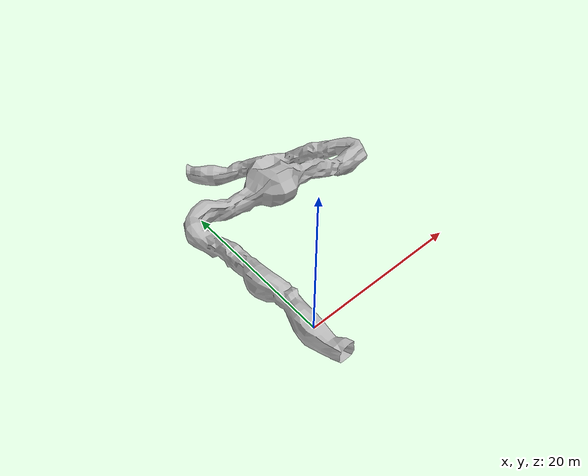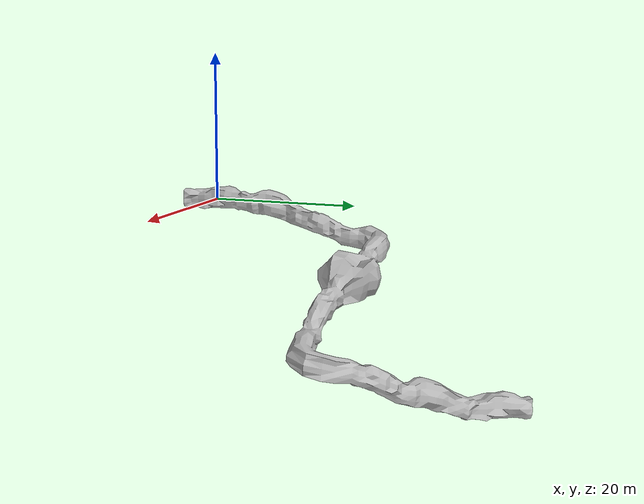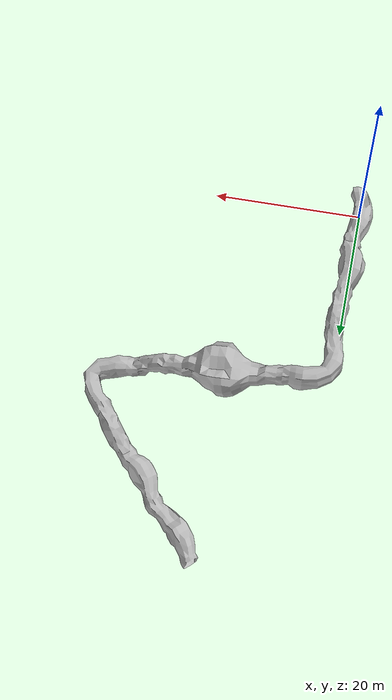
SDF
<?xml version="1.0" ?>
<sdf version="1.7">
  <model name="cave">
    <static>true</static>
    <link name="cave_link">
      <visual name="cave_visual">
        <geometry>
          <mesh>
            <uri>model://cave/meshes/smallcaves2.dae</uri>
            <scale>1 1 1</scale>
          </mesh>
        </geometry>
      </visual>
      <collision name="cave_collision">
        <geometry>
          <mesh>
            <uri>model://cave/meshes/smallcaves2.dae</uri>
            <scale>1 1 1</scale>
          </mesh>
        </geometry>
      </collision>
    </link>
  </model>
</sdf>
